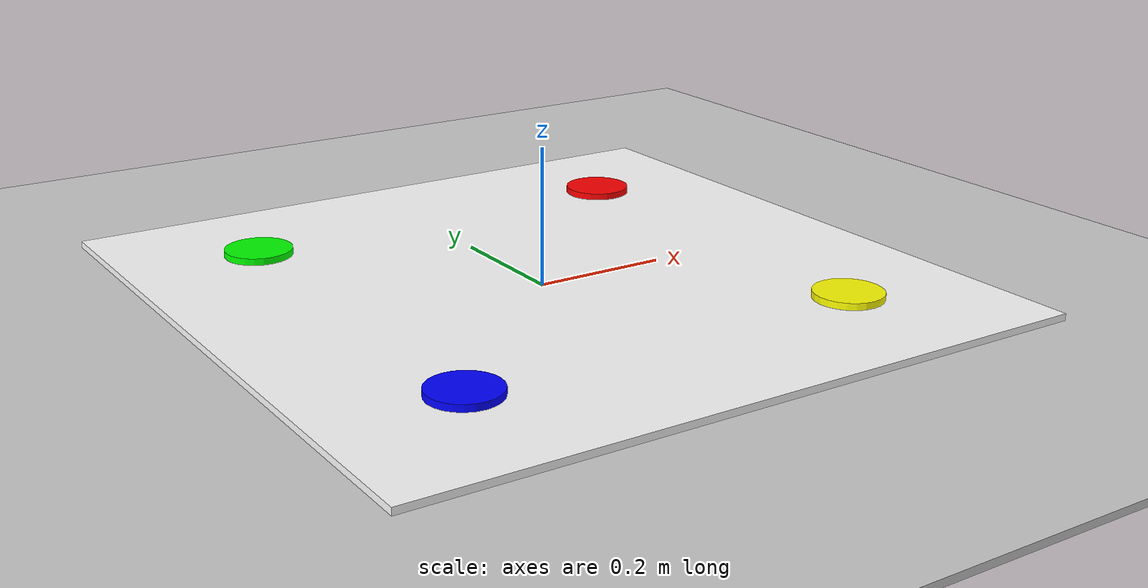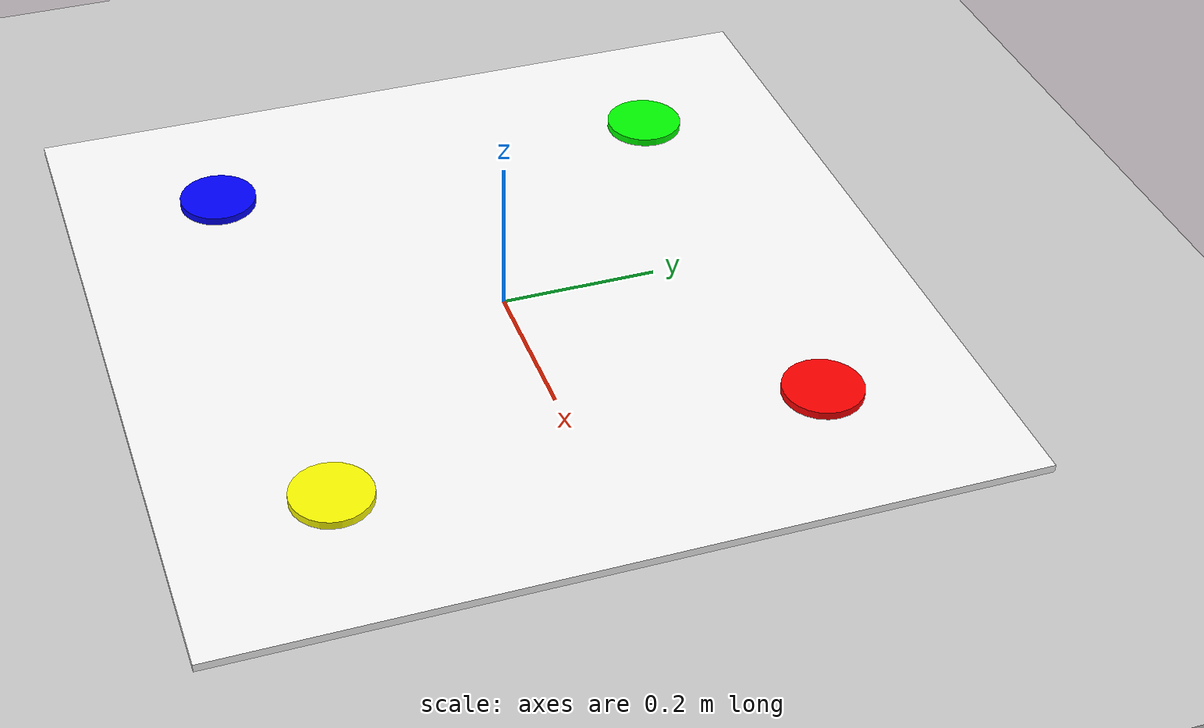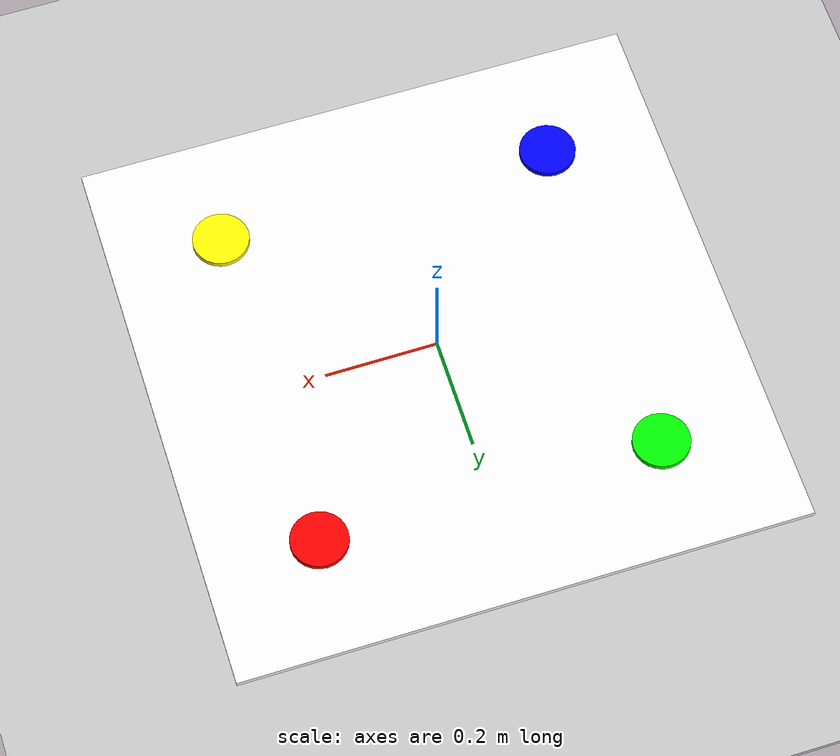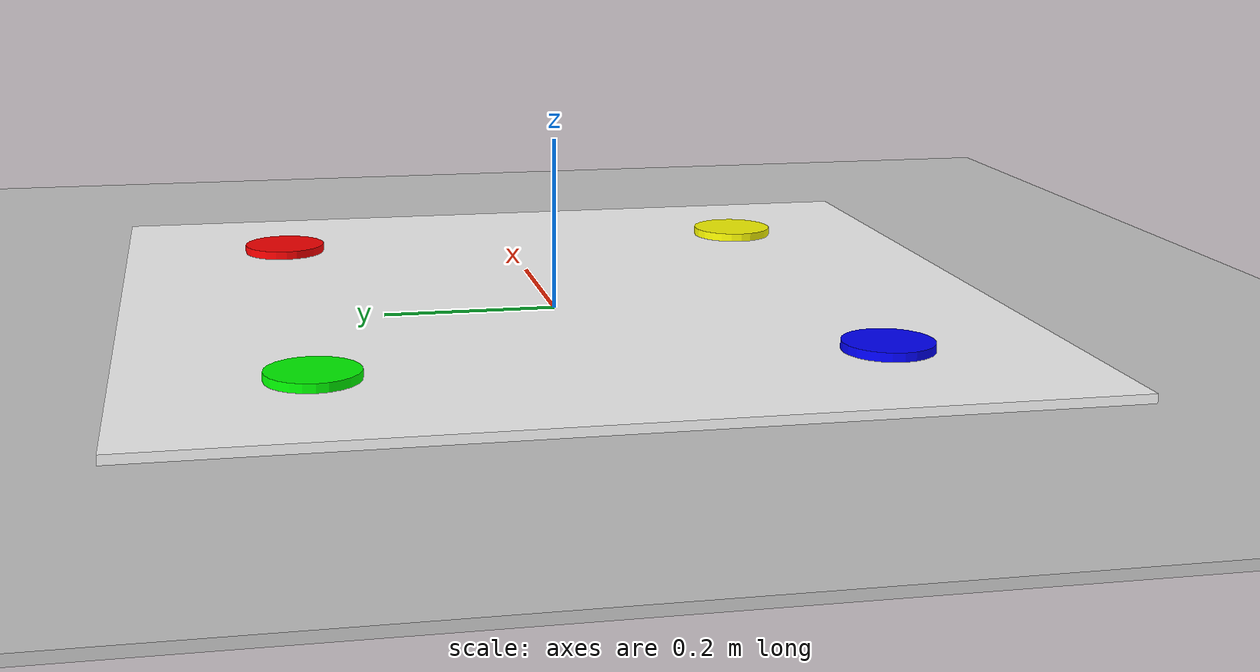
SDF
<?xml version="1.0"?>
<sdf version="1.7">
  <world name="ibvs_world">
    <!-- Physics -->
    <physics name="1ms" type="ignored">
      <max_step_size>0.001</max_step_size>
      <real_time_factor>1.0</real_time_factor>
    </physics>

    <!-- Required plugins for simulation -->
    <plugin filename="gz-sim-physics-system" name="gz::sim::systems::Physics">
    </plugin>
    <plugin filename="gz-sim-sensors-system" name="gz::sim::systems::Sensors">
      <render_engine>ogre2</render_engine>
    </plugin>
    <plugin filename="gz-sim-scene-broadcaster-system" name="gz::sim::systems::SceneBroadcaster">
    </plugin>
    <plugin filename="gz-sim-user-commands-system" name="gz::sim::systems::UserCommands">
    </plugin>

    <!-- Lighting -->
    <light name="sun" type="directional">
      <cast_shadows>true</cast_shadows>
      <pose>0 0 10 0 0 0</pose>
      <diffuse>0.8 0.8 0.8 1</diffuse>
      <specular>0.2 0.2 0.2 1</specular>
      <attenuation>
        <range>1000</range>
        <constant>0.9</constant>
        <linear>0.01</linear>
        <quadratic>0.001</quadratic>
      </attenuation>
      <direction>-0.5 0.1 -0.9</direction>
    </light>

    <!-- Ground Plane (Box for better depth detection) -->
    <model name="ground_plane">
      <static>true</static>
      <pose>0 0 -0.5 0 0 0</pose>
      <link name="link">
        <collision name="collision">
          <geometry>
            <box>
              <size>100 100 1</size>
            </box>
          </geometry>
        </collision>
        <visual name="visual">
          <pose>0 0 0.5 0 0 0</pose>
          <geometry>
            <box>
              <size>100 100 0.01</size>
            </box>
          </geometry>
          <material>
            <ambient>0.8 0.8 0.8 1</ambient>
            <diffuse>0.8 0.8 0.8 1</diffuse>
            <specular>0.8 0.8 0.8 1</specular>
          </material>
        </visual>
      </link>
    </model>

    <!-- Target board with markers for visual servoing -->
    <model name="target_board">
      <static>true</static>
      <pose>0 0 0.01 0 0 0</pose>

      <!-- Main board -->
      <link name="board_link">
        <visual name="board_visual">
          <geometry>
            <box>
              <size>1.0 1.0 0.01</size>
            </box>
          </geometry>
          <material>
            <ambient>1 1 1 1</ambient>
            <diffuse>1 1 1 1</diffuse>
          </material>
        </visual>
        <collision name="board_collision">
          <geometry>
            <box>
              <size>1.0 1.0 0.01</size>
            </box>
          </geometry>
        </collision>
      </link>

      <!-- Red marker (top-right) -->
      <link name="marker1">
        <pose relative_to="board_link">0.3 0.3 0.01 0 0 0</pose>
        <visual name="marker1_visual">
          <geometry>
            <cylinder>
              <radius>0.05</radius>
              <length>0.01</length>
            </cylinder>
          </geometry>
          <material>
            <ambient>1 0 0 1</ambient>
            <diffuse>1 0 0 1</diffuse>
          </material>
        </visual>
        <collision name="marker1_collision">
          <geometry>
            <cylinder>
              <radius>0.05</radius>
              <length>0.01</length>
            </cylinder>
          </geometry>
        </collision>
      </link>

      <!-- Green marker (top-left) -->
      <link name="marker2">
        <pose relative_to="board_link">-0.3 0.3 0.01 0 0 0</pose>
        <visual name="marker2_visual">
          <geometry>
            <cylinder>
              <radius>0.05</radius>
              <length>0.01</length>
            </cylinder>
          </geometry>
          <material>
            <ambient>0 1 0 1</ambient>
            <diffuse>0 1 0 1</diffuse>
          </material>
        </visual>
        <collision name="marker2_collision">
          <geometry>
            <cylinder>
              <radius>0.05</radius>
              <length>0.01</length>
            </cylinder>
          </geometry>
        </collision>
      </link>

      <!-- Blue marker (bottom-left) -->
      <link name="marker3">
        <pose relative_to="board_link">-0.3 -0.3 0.01 0 0 0</pose>
        <visual name="marker3_visual">
          <geometry>
            <cylinder>
              <radius>0.05</radius>
              <length>0.01</length>
            </cylinder>
          </geometry>
          <material>
            <ambient>0 0 1 1</ambient>
            <diffuse>0 0 1 1</diffuse>
          </material>
        </visual>
        <collision name="marker3_collision">
          <geometry>
            <cylinder>
              <radius>0.05</radius>
              <length>0.01</length>
            </cylinder>
          </geometry>
        </collision>
      </link>

      <!-- Yellow marker (bottom-right) -->
      <link name="marker4">
        <pose relative_to="board_link">0.3 -0.3 0.01 0 0 0</pose>
        <visual name="marker4_visual">
          <geometry>
            <cylinder>
              <radius>0.05</radius>
              <length>0.01</length>
            </cylinder>
          </geometry>
          <material>
            <ambient>1 1 0 1</ambient>
            <diffuse>1 1 0 1</diffuse>
          </material>
        </visual>
        <collision name="marker4_collision">
          <geometry>
            <cylinder>
              <radius>0.05</radius>
              <length>0.01</length>
            </cylinder>
          </geometry>
        </collision>
      </link>
    </model>

  </world>
</sdf>
